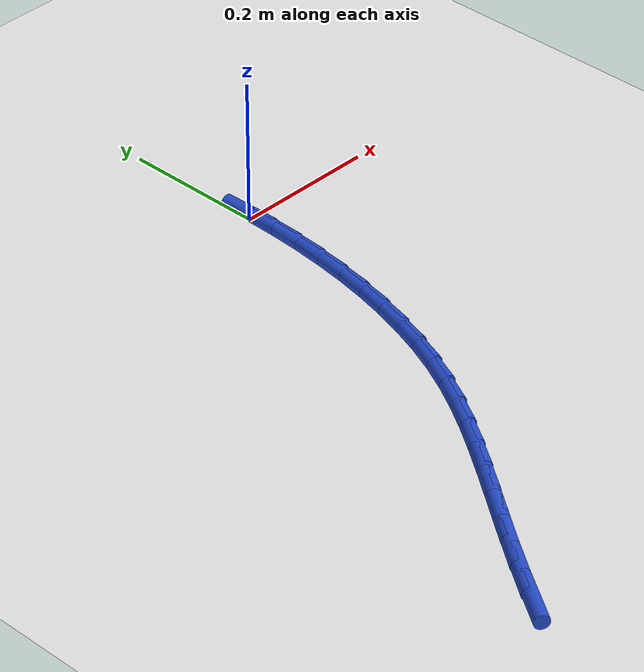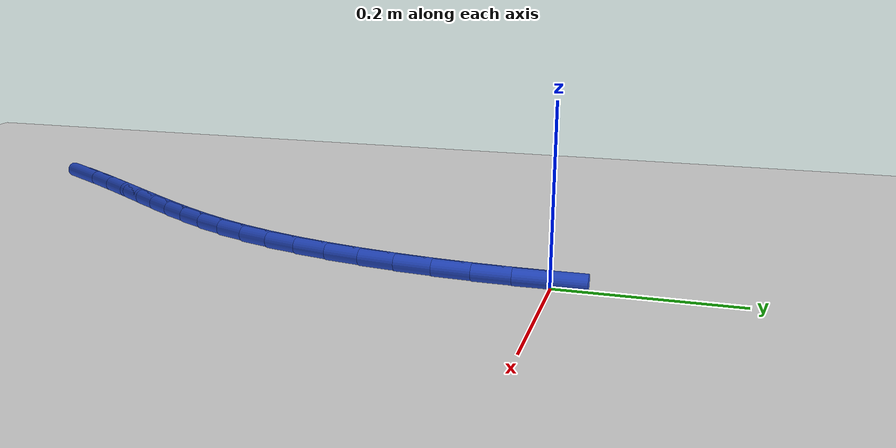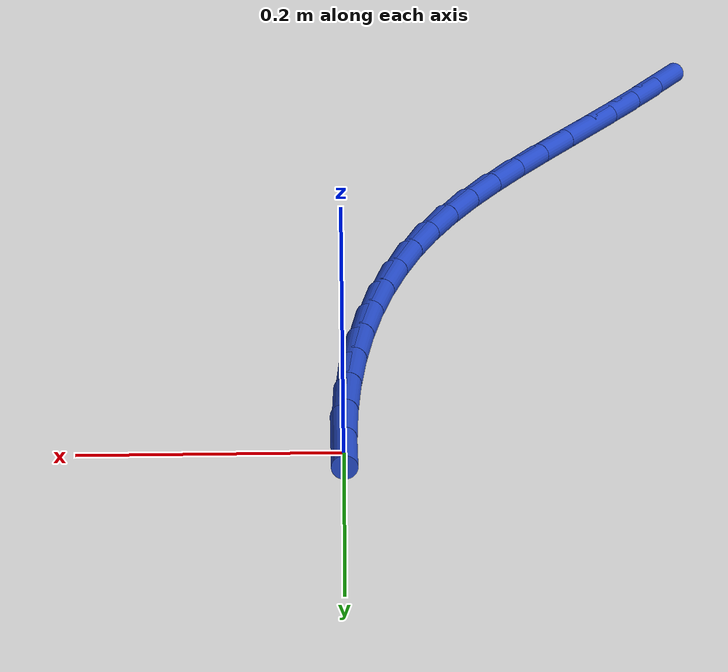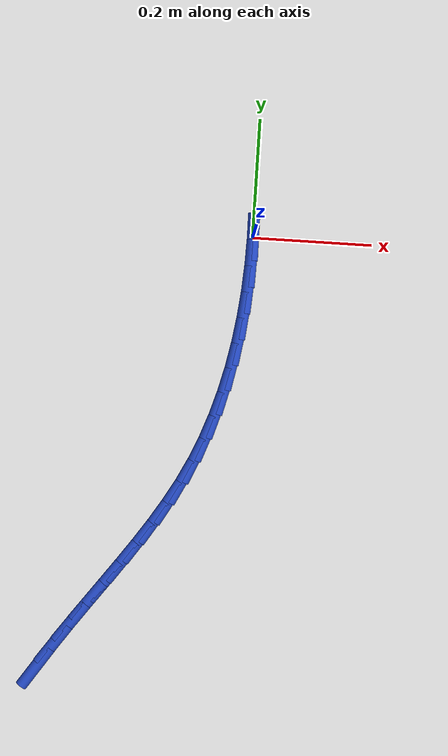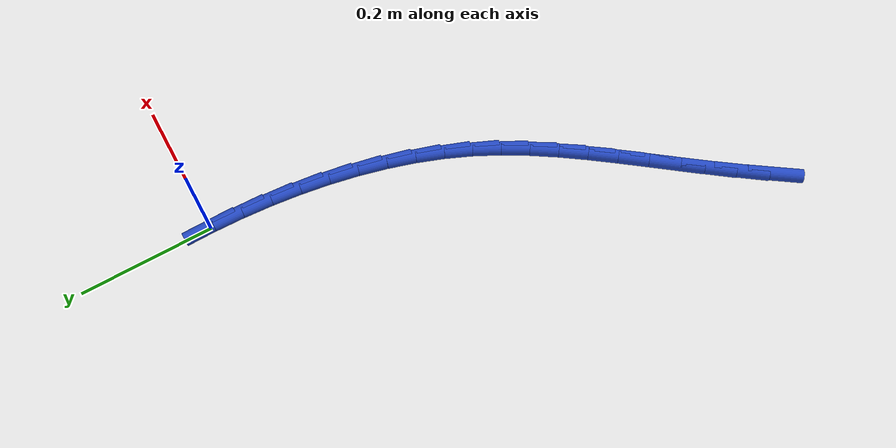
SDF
<sdf version="1.6">
 <world name="default">
  <model name="ground_plane">
   <static>1</static>
   <link name="link">
    <collision name="collision">
     <geometry><plane><normal>0 0 1</normal><size>100 100</size></plane></geometry>
     <surface><friction><ode><mu>100</mu><mu2>50</mu2></ode></friction></surface>
    </collision>
    <visual name="visual">
     <cast_shadows>0</cast_shadows>
     <geometry><plane><normal>0 0 1</normal><size>100 100</size></plane></geometry>
     <material>
      <script><uri>file://media/materials/scripts/gazebo.material</uri><name>Gazebo/WhiteGlow</name></script>
     </material>
    </visual>
   </link>
  </model>
  <model name="line">
   <link name="link_141">
    <pose>-0.3165081216703654 -0.7422940505758231 0.01 0 1.57 0.9783821762168398</pose>
    <collision name="collision">
     <geometry><cylinder><radius>0.01</radius><length>0.08</length></cylinder></geometry>
    </collision>
    <visual name="visual">
     <material>
      <script><name>Gazebo/Blue</name><uri>file://media/materials/scripts/gazebo.material</uri></script>
     </material>
     <geometry><cylinder><radius>0.01</radius><length>0.08</length></cylinder></geometry>
    </visual>
   </link>
   <link name="link_142">
    <pose>-0.2895470697138907 -0.7022364888075217 0.01 0 1.57 0.9567691352808613</pose>
    <collision name="collision">
     <geometry><cylinder><radius>0.01</radius><length>0.08</length></cylinder></geometry>
    </collision>
    <visual name="visual">
     <material>
      <script><name>Gazebo/Blue</name><uri>file://media/materials/scripts/gazebo.material</uri></script>
     </material>
     <geometry><cylinder><radius>0.01</radius><length>0.08</length></cylinder></geometry>
    </visual>
   </link>
   <link name="link_143">
    <pose>-0.2625769007170746 -0.6639771441392741 0.01 0 1.57 0.9409740149498681</pose>
    <collision name="collision">
     <geometry><cylinder><radius>0.01</radius><length>0.08</length></cylinder></geometry>
    </collision>
    <visual name="visual">
     <material>
      <script><name>Gazebo/Blue</name><uri>file://media/materials/scripts/gazebo.material</uri></script>
     </material>
     <geometry><cylinder><radius>0.01</radius><length>0.08</length></cylinder></geometry>
    </visual>
   </link>
   <link name="link_144">
    <pose>-0.23580723758084982 -0.627248140436135 0.01 0 1.57 0.9340078140824305</pose>
    <collision name="collision">
     <geometry><cylinder><radius>0.01</radius><length>0.08</length></cylinder></geometry>
    </collision>
    <visual name="visual">
     <material>
      <script><name>Gazebo/Blue</name><uri>file://media/materials/scripts/gazebo.material</uri></script>
     </material>
     <geometry><cylinder><radius>0.01</radius><length>0.08</length></cylinder></geometry>
    </visual>
   </link>
   <link name="link_145">
    <pose>-0.2094881942885873 -0.591660895769943 0.01 0 1.57 0.9366799906414728</pose>
    <collision name="collision">
     <geometry><cylinder><radius>0.01</radius><length>0.08</length></cylinder></geometry>
    </collision>
    <visual name="visual">
     <material>
      <script><name>Gazebo/Blue</name><uri>file://media/materials/scripts/gazebo.material</uri></script>
     </material>
     <geometry><cylinder><radius>0.01</radius><length>0.08</length></cylinder></geometry>
    </visual>
   </link>
   <link name="link_146">
    <pose>-0.18386988482365746 -0.5568268282125368 0.01 0 1.57 0.9496558683230997</pose>
    <collision name="collision">
     <geometry><cylinder><radius>0.01</radius><length>0.08</length></cylinder></geometry>
    </collision>
    <visual name="visual">
     <material>
      <script><name>Gazebo/Blue</name><uri>file://media/materials/scripts/gazebo.material</uri></script>
     </material>
     <geometry><cylinder><radius>0.01</radius><length>0.08</length></cylinder></geometry>
    </visual>
   </link>
   <link name="link_147">
    <pose>-0.15920242316943214 -0.522357355835757 0.01 0 1.57 0.9734026715149666</pose>
    <collision name="collision">
     <geometry><cylinder><radius>0.01</radius><length>0.08</length></cylinder></geometry>
    </collision>
    <visual name="visual">
     <material>
      <script><name>Gazebo/Blue</name><uri>file://media/materials/scripts/gazebo.material</uri></script>
     </material>
     <geometry><cylinder><radius>0.01</radius><length>0.08</length></cylinder></geometry>
    </visual>
   </link>
   <link name="link_148">
    <pose>-0.13573592330928183 -0.4878638967114421 0.01 0 1.57 1.0081046891896241</pose>
    <collision name="collision">
     <geometry><cylinder><radius>0.01</radius><length>0.08</length></cylinder></geometry>
    </collision>
    <visual name="visual">
     <material>
      <script><name>Gazebo/Blue</name><uri>file://media/materials/scripts/gazebo.material</uri></script>
     </material>
     <geometry><cylinder><radius>0.01</radius><length>0.08</length></cylinder></geometry>
    </visual>
   </link>
   <link name="link_149">
    <pose>-0.11372049922657737 -0.45295786891143114 0.01 0 1.57 1.0535495451479577</pose>
    <collision name="collision">
     <geometry><cylinder><radius>0.01</radius><length>0.08</length></cylinder></geometry>
    </collision>
    <visual name="visual">
     <material>
      <script><name>Gazebo/Blue</name><uri>file://media/materials/scripts/gazebo.material</uri></script>
     </material>
     <geometry><cylinder><radius>0.01</radius><length>0.08</length></cylinder></geometry>
    </visual>
   </link>
   <link name="link_150">
    <pose>-0.09340626490468973 -0.4172506905075634 0.01 0 1.57 1.1090042793859913</pose>
    <collision name="collision">
     <geometry><cylinder><radius>0.01</radius><length>0.08</length></cylinder></geometry>
    </collision>
    <visual name="visual">
     <material>
      <script><name>Gazebo/Blue</name><uri>file://media/materials/scripts/gazebo.material</uri></script>
     </material>
     <geometry><cylinder><radius>0.01</radius><length>0.08</length></cylinder></geometry>
    </visual>
   </link>
   <link name="link_151">
    <pose>-0.07504332188107195 -0.3803538017931605 0.01 0 1.57 1.1707040400884574</pose>
    <collision name="collision">
     <geometry><cylinder><radius>0.01</radius><length>0.08</length></cylinder></geometry>
    </collision>
    <visual name="visual">
     <material>
      <script><name>Gazebo/Blue</name><uri>file://media/materials/scripts/gazebo.material</uri></script>
     </material>
     <geometry><cylinder><radius>0.01</radius><length>0.08</length></cylinder></geometry>
    </visual>
   </link>
   <link name="link_152">
    <pose>-0.05881928314355336 -0.34199021284072095 0.01 0 1.57 1.229702034168146</pose>
    <collision name="collision">
     <geometry><cylinder><radius>0.01</radius><length>0.08</length></cylinder></geometry>
    </collision>
    <visual name="visual">
     <material>
      <script><name>Gazebo/Blue</name><uri>file://media/materials/scripts/gazebo.material</uri></script>
     </material>
     <geometry><cylinder><radius>0.01</radius><length>0.08</length></cylinder></geometry>
    </visual>
   </link>
   <link name="link_153">
    <pose>-0.044714081901246504 -0.3022537342484268 0.01 0 1.57 1.2845482183954207</pose>
    <collision name="collision">
     <geometry><cylinder><radius>0.01</radius><length>0.08</length></cylinder></geometry>
    </collision>
    <visual name="visual">
     <material>
      <script><name>Gazebo/Blue</name><uri>file://media/materials/scripts/gazebo.material</uri></script>
     </material>
     <geometry><cylinder><radius>0.01</radius><length>0.08</length></cylinder></geometry>
    </visual>
   </link>
   <link name="link_154">
    <pose>-0.03266456192711538 -0.2613151103712015 0.01 0 1.57 1.3356075808808738</pose>
    <collision name="collision">
     <geometry><cylinder><radius>0.01</radius><length>0.08</length></cylinder></geometry>
    </collision>
    <visual name="visual">
     <material>
      <script><name>Gazebo/Blue</name><uri>file://media/materials/scripts/gazebo.material</uri></script>
     </material>
     <geometry><cylinder><radius>0.01</radius><length>0.08</length></cylinder></geometry>
    </visual>
   </link>
   <link name="link_155">
    <pose>-0.022607566994123914 -0.21934508556396834 0.01 0 1.57 1.3832643151452775</pose>
    <collision name="collision">
     <geometry><cylinder><radius>0.01</radius><length>0.08</length></cylinder></geometry>
    </collision>
    <visual name="visual">
     <material>
      <script><name>Gazebo/Blue</name><uri>file://media/materials/scripts/gazebo.material</uri></script>
     </material>
     <geometry><cylinder><radius>0.01</radius><length>0.08</length></cylinder></geometry>
    </visual>
   </link>
   <link name="link_156">
    <pose>-0.01447994087523595 -0.1765144041816499 0.01 0 1.57 1.4279044330842217</pose>
    <collision name="collision">
     <geometry><cylinder><radius>0.01</radius><length>0.08</length></cylinder></geometry>
    </collision>
    <visual name="visual">
     <material>
      <script><name>Gazebo/Blue</name><uri>file://media/materials/scripts/gazebo.material</uri></script>
     </material>
     <geometry><cylinder><radius>0.01</radius><length>0.08</length></cylinder></geometry>
    </visual>
   </link>
   <link name="link_157">
    <pose>-0.008218527343415728 -0.13299381057917103 0.01 0 1.57 1.469905233752859</pose>
    <collision name="collision">
     <geometry><cylinder><radius>0.01</radius><length>0.08</length></cylinder></geometry>
    </collision>
    <visual name="visual">
     <material>
      <script><name>Gazebo/Blue</name><uri>file://media/materials/scripts/gazebo.material</uri></script>
     </material>
     <geometry><cylinder><radius>0.01</radius><length>0.08</length></cylinder></geometry>
    </visual>
   </link>
   <link name="link_158">
    <pose>-0.003760170171627019 -0.08895404911145424 0.01 0 1.57 1.509629915521192</pose>
    <collision name="collision">
     <geometry><cylinder><radius>0.01</radius><length>0.08</length></cylinder></geometry>
    </collision>
    <visual name="visual">
     <material>
      <script><name>Gazebo/Blue</name><uri>file://media/materials/scripts/gazebo.material</uri></script>
     </material>
     <geometry><cylinder><radius>0.01</radius><length>0.08</length></cylinder></geometry>
    </visual>
   </link>
   <link name="link_159">
    <pose>-0.0010417131328337957 -0.044565864133422846 0.01 0 1.57 1.5474258953468385</pose>
    <collision name="collision">
     <geometry><cylinder><radius>0.01</radius><length>0.08</length></cylinder></geometry>
    </collision>
    <visual name="visual">
     <material>
      <script><name>Gazebo/Blue</name><uri>file://media/materials/scripts/gazebo.material</uri></script>
     </material>
     <geometry><cylinder><radius>0.01</radius><length>0.08</length></cylinder></geometry>
    </visual>
   </link>
   <link name="link_160">
    <pose>-4.336808689942018e-18 -2.498001805406602e-16 0.01 0 1.57 -1.5579669065271124</pose>
    <collision name="collision">
     <geometry><cylinder><radius>0.01</radius><length>0.08</length></cylinder></geometry>
    </collision>
    <visual name="visual">
     <material>
      <script><name>Gazebo/Blue</name><uri>file://media/materials/scripts/gazebo.material</uri></script>
     </material>
     <geometry><cylinder><radius>0.01</radius><length>0.08</length></cylinder></geometry>
    </visual>
   </link>
  </model>
 </world>
</sdf>
